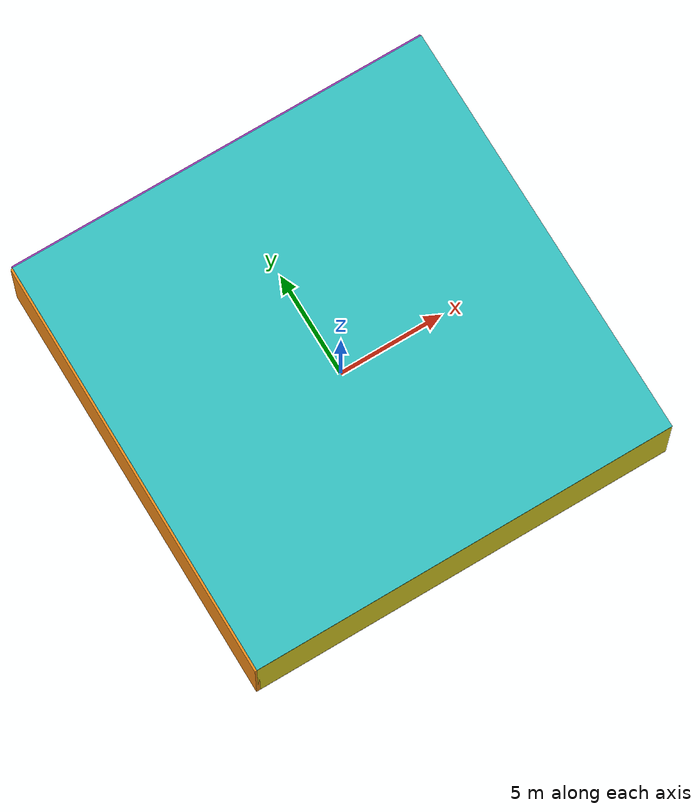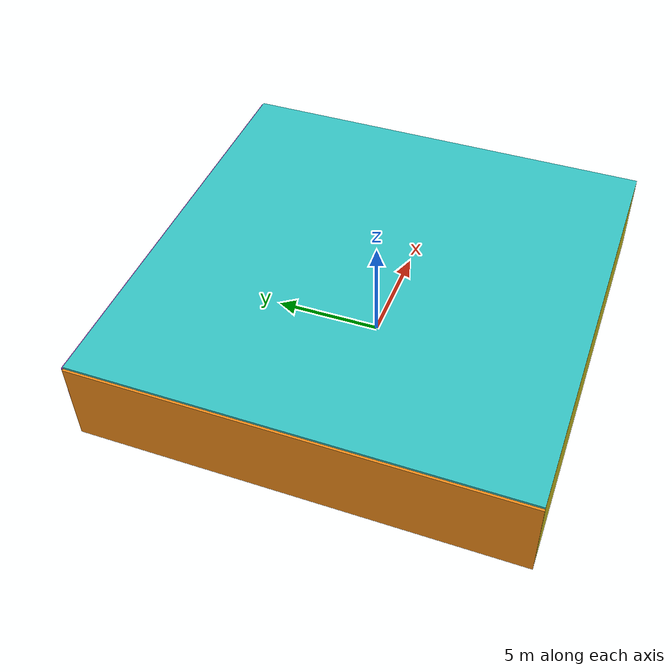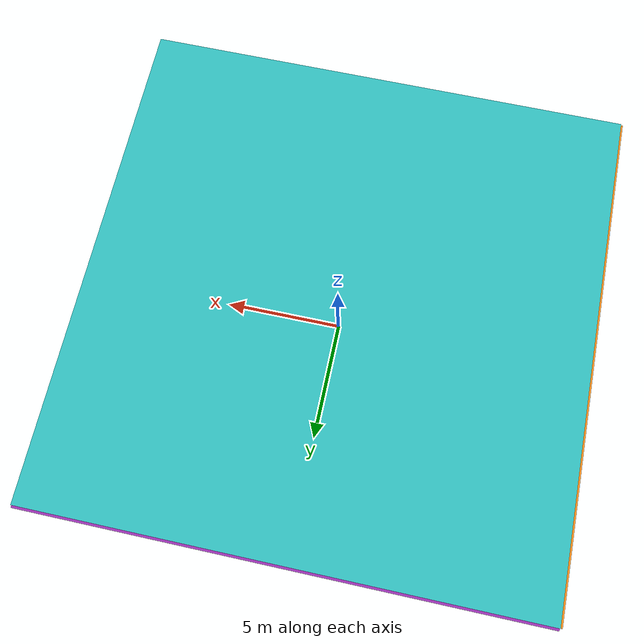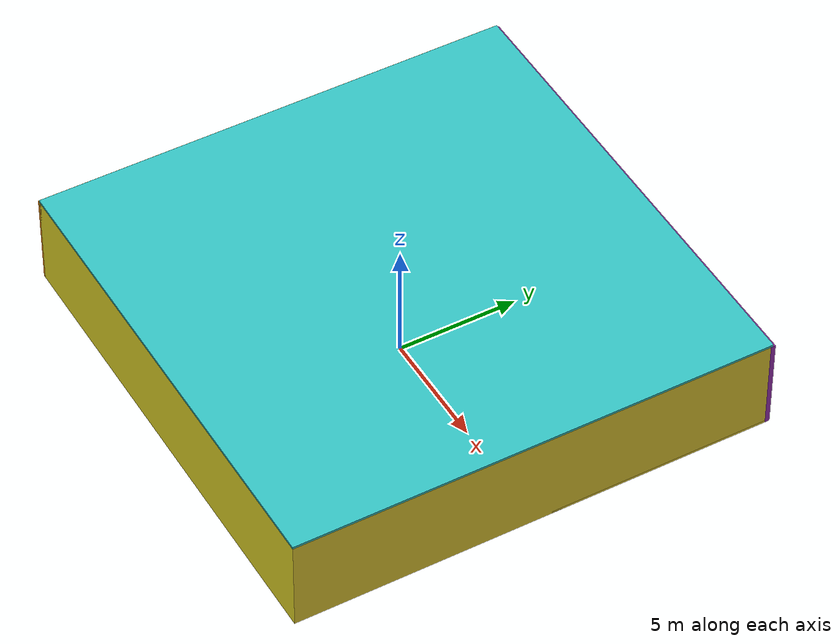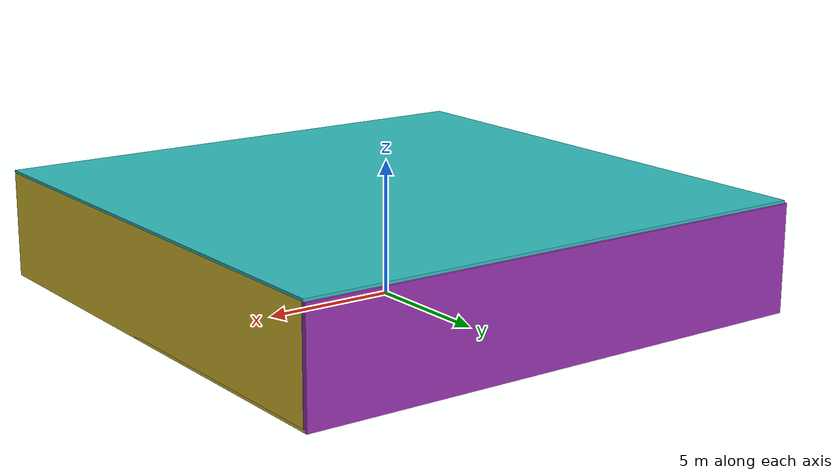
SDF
<sdf version="1.4">
 <world name="default">
  <physics type="ode">
   <max_step_size>0.001</max_step_size>
   <real_time_factor>1</real_time_factor>
   <real_time_update_rate>1000</real_time_update_rate>
   <gravity>0 0 -9.8</gravity>
  </physics>
  <scene><ambient>0.4 0.4 0.4 1</ambient><background>0.7 0.7 0.7 1</background><shadows>1</shadows></scene>
  <model name="Surrounding">
   <static>1</static>
   <link name="Ceiling">
    <collision name="Ceiling_Collision"><geometry><box><size>20 20 0.1</size></box></geometry></collision>
    <visual name="Ceiling_Visual">
     <geometry><box><size>20 20 0.1</size></box></geometry>
     <material>
      <script>
       <uri>file://media/materials/scripts/gazebo.material</uri>
       <name>Gazebo/TurquoiseGlowOutline</name>
      </script>
     </material>
    </visual>
    <pose>0 0 4.05 0 0 0</pose>
   </link>
   <link name="Wall_South">
    <collision name="Wall_South_Collision">
     <geometry><box><size>20 0 4</size></box></geometry>
     <pose>0 0 2 0 -0 0</pose>
    </collision>
    <visual name="Wall_South_Visual">
     <pose>0 0 2 0 -0 0</pose>
     <geometry><box><size>20 0 4</size></box></geometry>
     <material>
      <script><uri>file://media/materials/scripts/gazebo.material</uri><name>Gazebo/YellowGlow</name></script>
     </material>
    </visual>
    <velocity_decay><linear>0</linear><angular>0</angular></velocity_decay>
    <pose>0 -10 0 0 -0 0</pose>
   </link>
   <link name="Wall_East">
    <collision name="Wall_21_Collision">
     <geometry><box><size>20 0 4</size></box></geometry>
     <pose>0 0 2 0 -0 0</pose>
    </collision>
    <visual name="Wall_21_Visual">
     <pose>0 0 2 0 -0 0</pose>
     <geometry><box><size>20 0 4</size></box></geometry>
     <material>
      <script><uri>file://media/materials/scripts/gazebo.material</uri><name>Gazebo/ZincYellow</name></script>
     </material>
    </visual>
    <velocity_decay><linear>0</linear><angular>0</angular></velocity_decay>
    <pose>10 0 0 0 -0 1.5708</pose>
   </link>
   <link name="Wall_North">
    <collision name="Wall_22_Collision">
     <geometry><box><size>20 0.2 4</size></box></geometry>
     <pose>0 0 2 0 -0 0</pose>
    </collision>
    <visual name="Wall_22_Visual">
     <pose>0 0 2 0 -0 0</pose>
     <geometry><box><size>20 0.2 4</size></box></geometry>
     <material>
      <script><uri>file://media/materials/scripts/gazebo.material</uri><name>Gazebo/Purple</name></script>
     </material>
    </visual>
    <velocity_decay><linear>0</linear><angular>0</angular></velocity_decay>
    <pose>0 10 0 0 -0 0</pose>
   </link>
   <link name="Wall_West">
    <collision name="Wall_23_Collision">
     <geometry><box><size>20 0.2 4</size></box></geometry>
     <pose>0 0 2 0 -0 0</pose>
    </collision>
    <visual name="Wall_23_Visual">
     <pose>0 0 2 0 -0 0</pose>
     <geometry><box><size>20 0.2 4</size></box></geometry>
     <material>
      <script><uri>file://media/materials/scripts/gazebo.material</uri><name>Gazebo/Orange</name></script>
     </material>
    </visual>
    <velocity_decay><linear>0</linear><angular>0</angular></velocity_decay>
    <pose>-10 0 0 0 0 -1.5708</pose>
   </link>
   <link name="Ground_link">
    <collision name="collision">
     <pose>0 0 .05 0 -0 0</pose>
     <geometry><box><size>20 20 0.1</size></box></geometry>
    </collision>
    <visual name="visual">
     <pose>0 0 .05 0 -0 0</pose>
     <geometry><box><size>20 20 0.1</size></box></geometry>
     <material>
      <script><uri>file://media/materials/scripts/gazebo.material</uri><name>Gazebo/ZincYellow</name></script>
     </material>
    </visual>
   </link>
   <static>1</static>
  </model>
  <spherical_coordinates>
   <surface_model>EARTH_WGS84</surface_model>
   <latitude_deg>0</latitude_deg>
   <longitude_deg>0</longitude_deg>
   <elevation>0</elevation>
   <heading_deg>0</heading_deg>
  </spherical_coordinates>
  <light name="lightball_0" type="diffuse">
   <diffuse>0.8 0.8 0.8 1</diffuse>
   <specular>0.2 0.2 0.2 1</specular>
   <attenuation>
    <range>100</range>
    <constant>0.7</constant>
    <linear>0.01</linear>
    <quadratic>0.001</quadratic>
   </attenuation>
   <direction>-0.5 0.1 -0.9</direction>
   <pose>4.92817808191 4.4518498166 3.26022975897 0 0 0</pose>
  </light>
  <light name="lightball_1" type="diffuse">
   <diffuse>0.8 0.8 0.8 1</diffuse>
   <specular>0.2 0.2 0.2 1</specular>
   <attenuation>
    <range>100</range>
    <constant>0.7</constant>
    <linear>0.01</linear>
    <quadratic>0.001</quadratic>
   </attenuation>
   <direction>-0.5 0.1 -0.9</direction>
   <pose>-8.14381624872 6.88442004125 2.80814496603 0 0 0</pose>
  </light>
  <light name="lightball_2" type="diffuse">
   <diffuse>0.8 0.8 0.8 1</diffuse>
   <specular>0.2 0.2 0.2 1</specular>
   <attenuation>
    <range>100</range>
    <constant>0.7</constant>
    <linear>0.01</linear>
    <quadratic>0.001</quadratic>
   </attenuation>
   <direction>-0.5 0.1 -0.9</direction>
   <pose>6.73144238674 -8.51200034888 1.60689465255 0 0 0</pose>
  </light>
  <light name="lightball_3" type="diffuse">
   <diffuse>0.8 0.8 0.8 1</diffuse>
   <specular>0.2 0.2 0.2 1</specular>
   <attenuation>
    <range>100</range>
    <constant>0.7</constant>
    <linear>0.01</linear>
    <quadratic>0.001</quadratic>
   </attenuation>
   <direction>-0.5 0.1 -0.9</direction>
   <pose>7.54251000913 6.29728161851 3.50678761119 0 0 0</pose>
  </light>
  <light name="lightball_4" type="diffuse">
   <diffuse>0.8 0.8 0.8 1</diffuse>
   <specular>0.2 0.2 0.2 1</specular>
   <attenuation>
    <range>100</range>
    <constant>0.7</constant>
    <linear>0.01</linear>
    <quadratic>0.001</quadratic>
   </attenuation>
   <direction>-0.5 0.1 -0.9</direction>
   <pose>-7.82229844035 7.32287521376 1.40836163297 0 0 0</pose>
  </light>
  <light name="lightball_5" type="diffuse">
   <diffuse>0.8 0.8 0.8 1</diffuse>
   <specular>0.2 0.2 0.2 1</specular>
   <attenuation>
    <range>100</range>
    <constant>0.7</constant>
    <linear>0.01</linear>
    <quadratic>0.001</quadratic>
   </attenuation>
   <direction>-0.5 0.1 -0.9</direction>
   <pose>-1.36252147769 9.45345749315 1.42941380469 0 0 0</pose>
  </light>
  <light name="lightball_6" type="diffuse">
   <diffuse>0.8 0.8 0.8 1</diffuse>
   <specular>0.2 0.2 0.2 1</specular>
   <attenuation>
    <range>100</range>
    <constant>0.7</constant>
    <linear>0.01</linear>
    <quadratic>0.001</quadratic>
   </attenuation>
   <direction>-0.5 0.1 -0.9</direction>
   <pose>9.08498492251 -2.41483795309 3.67605864947 0 0 0</pose>
  </light>
  <light name="lightball_7" type="diffuse">
   <diffuse>0.8 0.8 0.8 1</diffuse>
   <specular>0.2 0.2 0.2 1</specular>
   <attenuation>
    <range>100</range>
    <constant>0.7</constant>
    <linear>0.01</linear>
    <quadratic>0.001</quadratic>
   </attenuation>
   <direction>-0.5 0.1 -0.9</direction>
   <pose>-9.33496641778 4.87662139947 1.14121555825 0 0 0</pose>
  </light>
  <light name="lightball_8" type="diffuse">
   <diffuse>0.8 0.8 0.8 1</diffuse>
   <specular>0.2 0.2 0.2 1</specular>
   <attenuation>
    <range>100</range>
    <constant>0.7</constant>
    <linear>0.01</linear>
    <quadratic>0.001</quadratic>
   </attenuation>
   <direction>-0.5 0.1 -0.9</direction>
   <pose>-6.88978950438 -2.54255707408 3.29709915902 0 0 0</pose>
  </light>
  <light name="lightball_9" type="diffuse">
   <diffuse>0.8 0.8 0.8 1</diffuse>
   <specular>0.2 0.2 0.2 1</specular>
   <attenuation>
    <range>100</range>
    <constant>0.7</constant>
    <linear>0.01</linear>
    <quadratic>0.001</quadratic>
   </attenuation>
   <direction>-0.5 0.1 -0.9</direction>
   <pose>3.63635665178 -5.44052843525 1.47018256899 0 0 0</pose>
  </light>
  <light name="lightball_10" type="diffuse">
   <diffuse>0.8 0.8 0.8 1</diffuse>
   <specular>0.2 0.2 0.2 1</specular>
   <attenuation>
    <range>100</range>
    <constant>0.7</constant>
    <linear>0.01</linear>
    <quadratic>0.001</quadratic>
   </attenuation>
   <direction>-0.5 0.1 -0.9</direction>
   <pose>-5.83001346788 -8.64658610419 1.33820775502 0 0 0</pose>
  </light>
  <include>
   <uri>model://textured_shapes</uri>
   <pose>-6.46149345826 -4.77600233373 0 0 0 1.87381286947</pose>
  </include>
  <include><uri>model://table</uri><pose>-2.55251599084 -7.95217068467 0 0 0 0.135204712558</pose></include>
  <include><uri>model://table</uri><pose>-1.94007213509 0.363993928987 0 0 0 2.68225727982</pose></include>
  <include>
   <uri>model://construction_cone</uri>
   <pose>0.374019641668 1.43236017254 0 0 0 3.11222950278</pose>
  </include>
  <include><uri>model://table</uri><pose>0.473089849195 7.31154519153 0 0 0 0.860781108734</pose></include>
  <include><uri>model://cabinet</uri><pose>8.17007459415 -0.561555074031 0 0 0 1.72158431286</pose></include>
  <include><uri>model://table</uri><pose>7.31601159377 7.41482457427 0 0 0 0.12823355812</pose></include>
 </world>
</sdf>

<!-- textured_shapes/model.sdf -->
<sdf version="1.6">
  <model name="textured_shapes">
    <pose>0 0 0.5 0 0 0</pose>
    <link name="box">
      <pose>0 -1.5 0 0 0 0</pose>
      <collision name="collision">
        <geometry>
          <box>
            <size>1 1 1</size>
          </box>
        </geometry>
      </collision>
      <visual name="visual">
        <geometry>
          <box>
            <size>1 1 1</size>
          </box>
        </geometry>
        <material>
          <script>
            <uri>model://../model_source/models/textured_shapes/materials/scripts</uri>
            <uri>model://../model_source/models/textured_shapes/materials/textures</uri>
            <name>TexturedShape/Squares</name>
          </script>
        </material>
      </visual>
    </link>
    <link name="sphere">
      <collision name="collision">
        <geometry>
          <sphere>
            <radius>0.5</radius>
          </sphere>
        </geometry>
      </collision>
      <visual name="visual">
        <geometry>
          <sphere>
            <radius>0.5</radius>
          </sphere>
        </geometry>
        <material>
          <script>
            <uri>model://../model_source/models/textured_shapes/materials/scripts</uri>
            <uri>model://../model_source/models/textured_shapes/materials/textures</uri>
            <name>TexturedShape/Squares</name>
          </script>
        </material>
      </visual>
    </link>
    <link name="cylinder">
      <pose>0 1.5 0 0 0 0</pose>
      <collision name="collision">
        <geometry>
          <cylinder>
            <radius>0.5</radius>
            <length>1</length>
          </cylinder>
        </geometry>
      </collision>
      <visual name="visual">
        <geometry>
          <cylinder>
            <radius>0.5</radius>
            <length>1</length>
          </cylinder>
        </geometry>
        <material>
          <script>
            <uri>model://../model_source/models/textured_shapes/materials/scripts</uri>
            <uri>model://../model_source/models/textured_shapes/materials/textures</uri>
            <name>TexturedShape/Squares</name>
          </script>
        </material>
      </visual>
    </link>
  </model>
</sdf>

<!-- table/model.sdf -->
<sdf version="1.5">
  <model name="table">
    <static>true</static>
    <link name="link">
      <collision name="surface">
        <pose>0 0 1.0 0 0 0</pose>
        <geometry>
          <box>
            <size>1.5 0.8 0.03</size>
          </box>
        </geometry>
        <surface>
          <friction>
            <ode>
              <mu>0.6</mu>
              <mu2>0.6</mu2>
            </ode>
          </friction>
        </surface>
      </collision>
      <visual name="visual1">
        <pose>0 0 1.0 0 0 0</pose>
        <geometry>
          <box>
            <size>1.5 0.8 0.03</size>
          </box>
        </geometry>
        <material>
          <script>
            <uri>model://media/materials/scripts/gazebo.material</uri>
            <name>Gazebo/Wood</name>
          </script>
        </material>
      </visual>
      <collision name="front_left_leg">
        <pose>0.68 0.38 0.5 0 0 0</pose>
        <geometry>
          <cylinder>
            <radius>0.02</radius>
            <length>1.0</length>
          </cylinder>
        </geometry>
      </collision>
      <visual name="front_left_leg">
        <pose>0.68 0.38 0.5 0 0 0</pose>
        <geometry>
          <cylinder>
            <radius>0.02</radius>
            <length>1.0</length>
          </cylinder>
        </geometry>
        <material>
          <script>
            <uri>model://media/materials/scripts/gazebo.material</uri>
            <name>Gazebo/Grey</name>
          </script>
        </material>
      </visual>
      <collision name="front_right_leg">
        <pose>0.68 -0.38 0.5 0 0 0</pose>
        <geometry>
          <cylinder>
            <radius>0.02</radius>
            <length>1.0</length>
          </cylinder>
        </geometry>
      </collision>
      <visual name="front_right_leg">
        <pose>0.68 -0.38 0.5 0 0 0</pose>
        <geometry>
          <cylinder>
            <radius>0.02</radius>
            <length>1.0</length>
          </cylinder>
        </geometry>
        <material>
          <script>
            <uri>model://media/materials/scripts/gazebo.material</uri>
            <name>Gazebo/Grey</name>
          </script>
        </material>
      </visual>
      <collision name="back_right_leg">
        <pose>-0.68 -0.38 0.5 0 0 0</pose>
        <geometry>
          <cylinder>
            <radius>0.02</radius>
            <length>1.0</length>
          </cylinder>
        </geometry>
      </collision>
      <visual name="back_right_leg">
        <pose>-0.68 -0.38 0.5 0 0 0</pose>
        <geometry>
          <cylinder>
            <radius>0.02</radius>
            <length>1.0</length>
          </cylinder>
        </geometry>
        <material>
          <script>
            <uri>model://media/materials/scripts/gazebo.material</uri>
            <name>Gazebo/Grey</name>
          </script>
        </material>
      </visual>
      <collision name="back_left_leg">
        <pose>-0.68 0.38 0.5 0 0 0</pose>
        <geometry>
          <cylinder>
            <radius>0.02</radius>
            <length>1.0</length>
          </cylinder>
        </geometry>
      </collision>
      <visual name="back_left_leg">
        <pose>-0.68 0.38 0.5 0 0 0</pose>
        <geometry>
          <cylinder>
            <radius>0.02</radius>
            <length>1.0</length>
          </cylinder>
        </geometry>
        <material>
          <script>
            <uri>model://media/materials/scripts/gazebo.material</uri>
            <name>Gazebo/Grey</name>
          </script>
        </material>
      </visual>
    </link>
  </model>
</sdf>

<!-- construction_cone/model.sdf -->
<sdf version="1.5">
  <model name="Construction Cone">
    <link name="link">
      <collision name="collision">
        <geometry>
          <mesh>
            <scale>10 10 10</scale>
            <uri>file://isr-testbed/construction_cone/meshes/construction_cone.dae</uri>
          </mesh>
        </geometry>
      </collision>
      <visual name="visual">
        <geometry>
          <mesh>
            <scale>10 10 10</scale>
            <uri>file://isr-testbed/construction_cone/meshes/construction_cone.dae</uri>
          </mesh>
        </geometry>
      </visual>
    </link>
  </model>
</sdf>

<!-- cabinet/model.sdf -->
<sdf version="1.5">
  <model name="cabinet">
    <static>true</static>
    <link name="cabinet_bottom_plate">
      <inertial>
        <pose>0 0 -1 0 0 0</pose>
        <inertia>
          <ixx>2.050000</ixx>
          <ixy>0</ixy>
          <ixz>0</ixz>
          <iyy>2.050000</iyy>
          <iyz>0</iyz>
          <izz>2.050000</izz>
        </inertia>
        <mass>25.000000</mass>
      </inertial>
      <collision name="cabinet_bottom_plate_geom">
        <pose>0 0 0.010000 0 0 0</pose>
        <geometry>
          <box>
            <size>0.450000 0.450000 0.020000</size>
          </box>
        </geometry>
      </collision>
      <visual name="cabinet_bottom_plate_geom_visual">
        <pose>0 0 0.010000 0 0 0</pose>
        <geometry>
          <box>
            <size>0.450000 0.450000 0.020000</size>
          </box>
        </geometry>
        <material>
          <script>
            <uri>model://media/materials/scripts/gazebo.material</uri>
            <name>Gazebo/Wood</name>
          </script>
        </material>
      </visual>
      <collision name="cabinet_bottom_plate_geom_cabinet_back_plate">
        <pose>0.235000 0 0.510000 0 0 0</pose>
        <geometry>
          <box>
            <size>0.020000 0.450000 1.020000</size>
          </box>
        </geometry>
      </collision>
      <visual name="cabinet_bottom_plate_geom_cabinet_back_plate_visual">
        <pose>0.235000 0 0.510000 0 0 0</pose>
        <geometry>
          <box>
            <size>0.020000 0.450000 1.020000</size>
          </box>
        </geometry>
        <material>
          <script>
            <uri>model://media/materials/scripts/gazebo.material</uri>
            <name>Gazebo/Wood</name>
          </script>
        </material>
      </visual>
      <collision name="cabinet_bottom_plate_geom_cabinet_left_plate">
        <pose>0 0.235000 0.510000 0 0 0</pose>
        <geometry>
          <box>
            <size>0.450000 0.020000 1.020000</size>
          </box>
        </geometry>
      </collision>
      <visual name="cabinet_bottom_plate_geom_cabinet_left_plate_visual">
        <pose>0 0.235000 0.510000 0 0 0</pose>
        <geometry>
          <box>
            <size>0.450000 0.020000 1.020000</size>
          </box>
        </geometry>
        <material>
          <script>
            <uri>model://media/materials/scripts/gazebo.material</uri>
            <name>Gazebo/Wood</name>
          </script>
        </material>
      </visual>
      <collision name="cabinet_bottom_plate_geom_cabinet_middle_plate">
        <pose>0 0 0.510000 0 0 0</pose>
        <geometry>
          <box>
            <size>0.450000 0.450000 0.020000</size>
          </box>
        </geometry>
      </collision>
      <visual name="cabinet_bottom_plate_geom_cabinet_middle_plate_visual">
        <pose>0 0 0.510000 0 0 0</pose>
        <geometry>
          <box>
            <size>0.450000 0.450000 0.020000</size>
          </box>
        </geometry>
        <material>
          <script>
            <uri>model://media/materials/scripts/gazebo.material</uri>
            <name>Gazebo/Wood</name>
          </script>
        </material>
      </visual>
      <collision name="cabinet_bottom_plate_geom_cabinet_right_plate">
        <pose>0 -0.235000 0.510000 0 0 0</pose>
        <geometry>
          <box>
            <size>0.450000 0.020000 1.020000</size>
          </box>
        </geometry>
      </collision>
      <visual name="cabinet_bottom_plate_geom_cabinet_right_plate_visual">
        <pose>0 -0.235000 0.510000 0 0 0</pose>
        <geometry>
          <box>
            <size>0.450000 0.020000 1.020000</size>
          </box>
        </geometry>
        <material>
          <script>
            <uri>model://media/materials/scripts/gazebo.material</uri>
            <name>Gazebo/Wood</name>
          </script>
        </material>
      </visual>
      <collision name="cabinet_bottom_plate_geom_cabinet_top_plate">
        <pose>0 0 1.010000 0 0 0</pose>
        <geometry>
          <box>
            <size>0.450000 0.450000 0.020000</size>
          </box>
        </geometry>
      </collision>
      <visual name="cabinet_bottom_plate_geom_cabinet_top_plate_visual">
        <pose>0 0 1.010000 0 0 0</pose>
        <geometry>
          <box>
            <size>0.450000 0.450000 0.020000</size>
          </box>
        </geometry>
        <material>
          <script>
            <uri>model://media/materials/scripts/gazebo.material</uri>
            <name>Gazebo/Wood</name>
          </script>
        </material>
      </visual>
    </link>
  </model>
</sdf>
